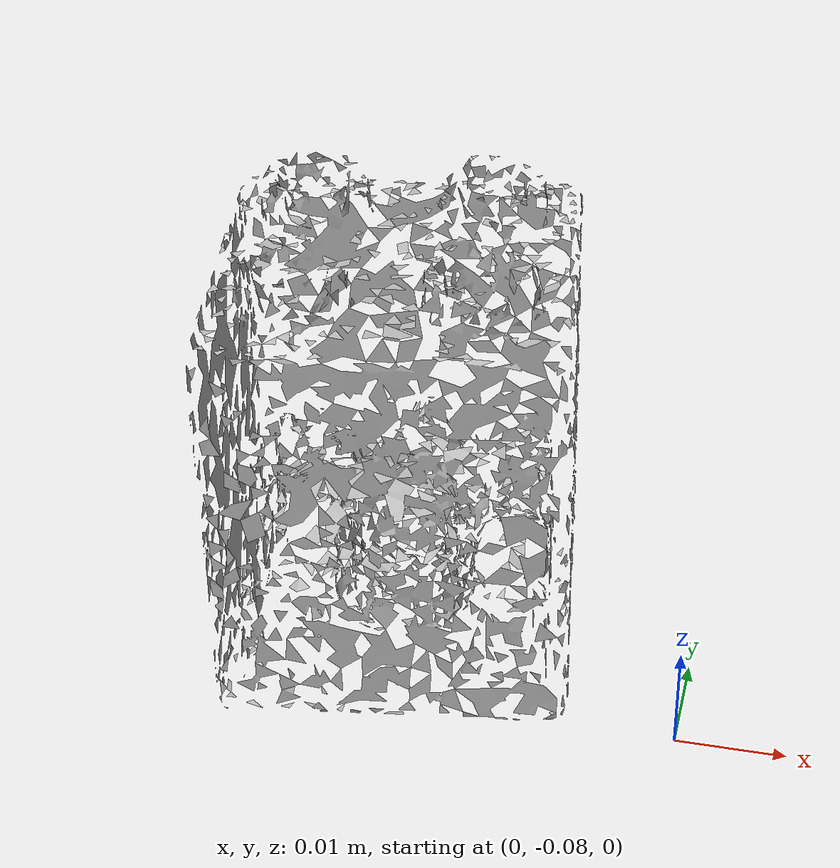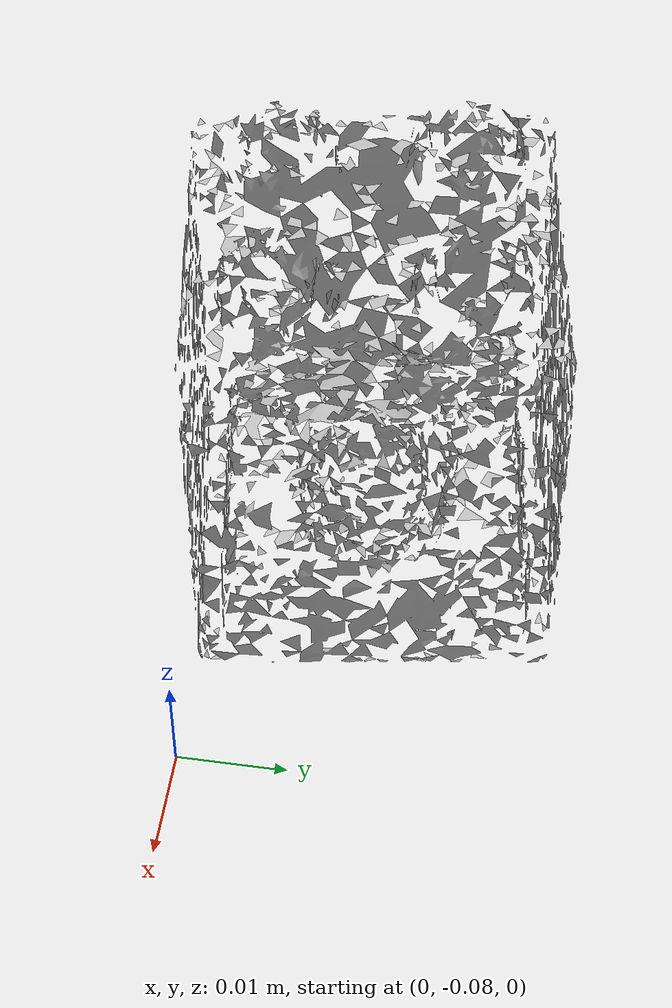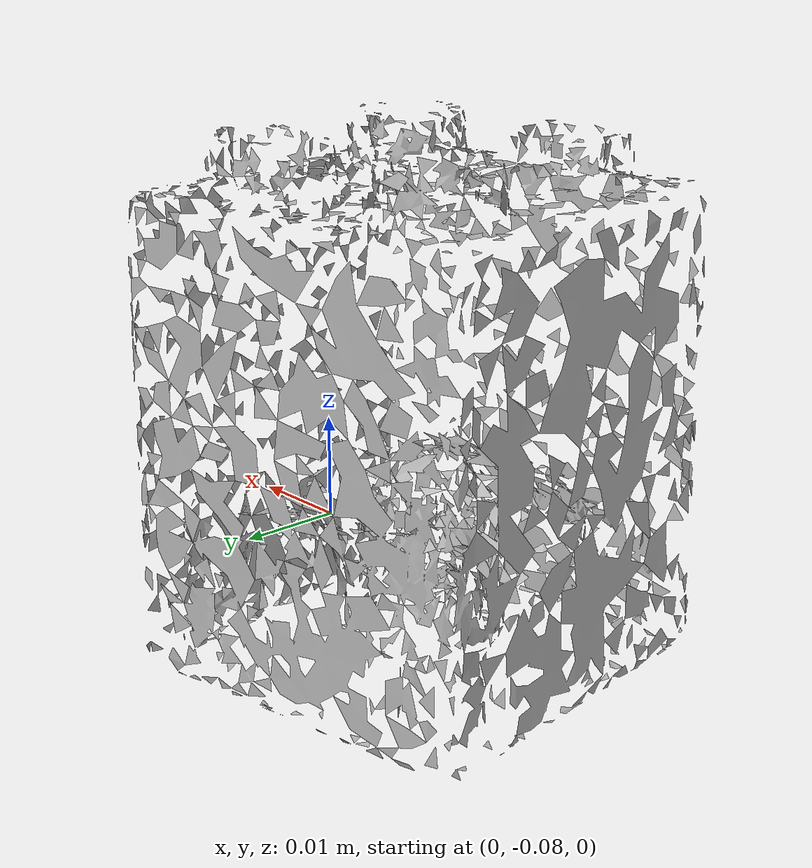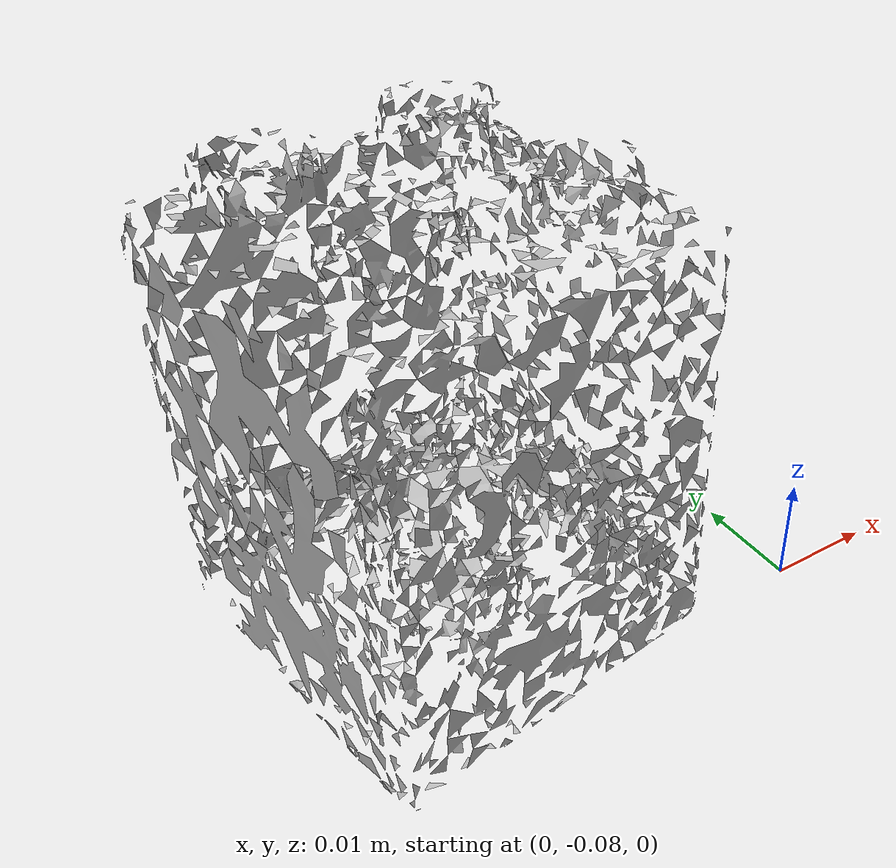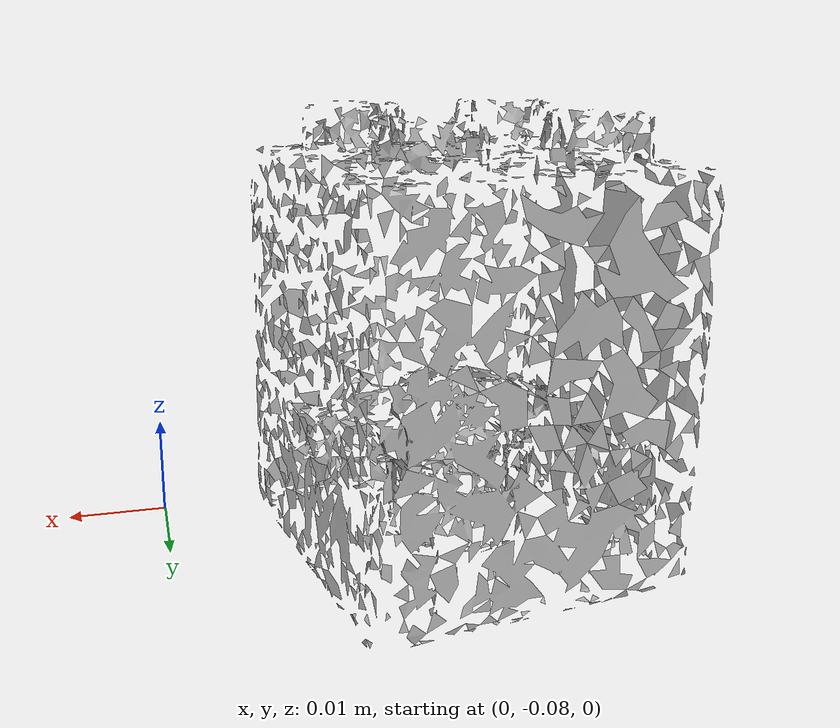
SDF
<?xml version='1.0'?>
<sdf version="1.4">
  <model name="f_lego_duplo">
    <static>false</static>
    <link name="link">
      <inertial>
        <pose>-0.028303653148494833 -0.06646108978076667 0.02360720585959244 3.080372202840672 0.1470208696349668 -3.0209824053208783</pose>
        <mass>3.094883764375316e-05</mass>
        <inertia>
          <ixx>5.914758017144647e-09</ixx>
          <ixy>-1.8700300041019287e-25</ixy>
          <ixz>-2.243107327036337e-25</ixz>
          <iyy>5.903230909155463e-09</iyy>
          <iyz>5.788277971566241e-25</iyz>
          <izz>5.691088145340753e-09</izz>
        </inertia>
      </inertial>
      <collision name="collision">
        <geometry>
          <mesh>
            <!-- Use a downsampled mesh for collisions -->
            <uri>model://073-f_lego_duplo/downsampled.obj</uri>
	        </mesh>
        </geometry>
        <surface>
      </surface>
      </collision>
      <visual name="visual">
        <geometry>
          <mesh>
            <uri>model://073-f_lego_duplo/google_16k/textured.obj</uri>
	        </mesh>
        </geometry>
        <material>
          <script>
            <uri>model://073-f_lego_duplo/f_lego_duplo.material</uri>
            <name>f_lego_duplo</name>
          </script>
        </material>
      </visual>
    </link>
  </model>
</sdf>
